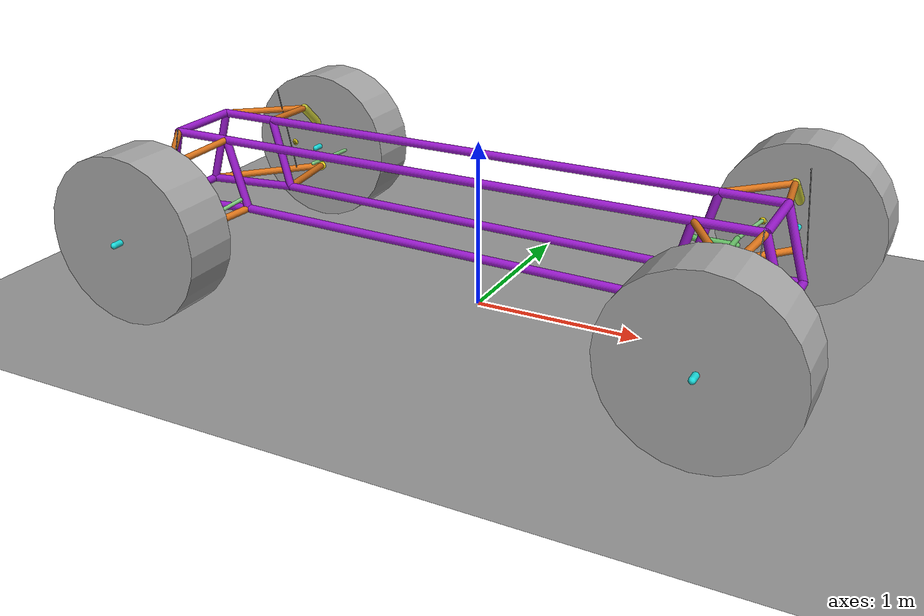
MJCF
<mujoco model="feda_double_wishbone">

  <compiler angle="radian" autolimits="true"/>
  <option gravity="0 0 -9.81" timestep="0.002" integrator="implicitfast"/>
  <size nconmax="200"/>

  <default>
    <geom density="500" contype="1" conaffinity="1"/>
    <joint limited="false"/>
    <equality solimp="0.99 0.999 0.0001" solref="0.02 1"/>
  </default>

  <worldbody>
    <!-- Ground plane: MuJoCo contact solver needs this in the MJCF to detect
         wheel-ground contact from the transparent cylinder geoms on each spindle. -->
    <geom name="ground" type="plane" size="50 50 0.1" rgba="0.6 0.6 0.6 1"
          contype="1" conaffinity="1"/>
    <!-- ── Chassis ── -->
    <!-- FEDA chassis: mass 5672.87 kg, COM from FEDA_Chassis.cpp -->
    <body name="chassis" pos="0 0 0.499">
      <freejoint name="chassis_free"/>
      <inertial mass="5672.87" pos="-0.111 0.009 0.610"
                diaginertia="5740 7660 9870"/>

      <!-- Spring attachment sites on chassis -->
      <site name="spring_c_fl" pos=" 1.7450 -0.493925  0.46209"/>
      <site name="spring_c_fr" pos=" 1.7450  0.493925  0.46209"/>
      <site name="spring_c_rl" pos="-1.7450 -0.493925  0.46209"/>
      <site name="spring_c_rr" pos="-1.7450  0.493925  0.46209"/>

      <!-- ── Chassis frame (visual only): purple pipes connecting inboard A-arm tips ── -->
      <!-- FL corner box -->
      <geom type="capsule" fromto=" 1.69885 -0.2324  0.3469    1.32955 -0.2324  0.3469 " size="0.025" rgba="0.6 0.1 0.8 1" contype="0" conaffinity="0"/>
      <geom type="capsule" fromto=" 1.8188  -0.22246 -0.0800    1.1988  -0.22451 -0.1190" size="0.025" rgba="0.6 0.1 0.8 1" contype="0" conaffinity="0"/>
      <geom type="capsule" fromto=" 1.69885 -0.2324  0.3469    1.8188  -0.22246 -0.0800" size="0.025" rgba="0.6 0.1 0.8 1" contype="0" conaffinity="0"/>
      <geom type="capsule" fromto=" 1.32955 -0.2324  0.3469    1.1988  -0.22451 -0.1190" size="0.025" rgba="0.6 0.1 0.8 1" contype="0" conaffinity="0"/>
      <!-- FR corner box -->
      <geom type="capsule" fromto=" 1.69885  0.2324  0.3469    1.32955  0.2324  0.3469 " size="0.025" rgba="0.6 0.1 0.8 1" contype="0" conaffinity="0"/>
      <geom type="capsule" fromto=" 1.8188   0.22246 -0.0800    1.1988   0.22451 -0.1190" size="0.025" rgba="0.6 0.1 0.8 1" contype="0" conaffinity="0"/>
      <geom type="capsule" fromto=" 1.69885  0.2324  0.3469    1.8188   0.22246 -0.0800" size="0.025" rgba="0.6 0.1 0.8 1" contype="0" conaffinity="0"/>
      <geom type="capsule" fromto=" 1.32955  0.2324  0.3469    1.1988   0.22451 -0.1190" size="0.025" rgba="0.6 0.1 0.8 1" contype="0" conaffinity="0"/>
      <!-- RL corner box -->
      <geom type="capsule" fromto="-1.60325 -0.2324  0.3469   -1.97255 -0.2324  0.3469 " size="0.025" rgba="0.6 0.1 0.8 1" contype="0" conaffinity="0"/>
      <geom type="capsule" fromto="-1.4832  -0.22246 -0.0800  -2.1032  -0.22451 -0.1190" size="0.025" rgba="0.6 0.1 0.8 1" contype="0" conaffinity="0"/>
      <geom type="capsule" fromto="-1.60325 -0.2324  0.3469   -1.4832  -0.22246 -0.0800" size="0.025" rgba="0.6 0.1 0.8 1" contype="0" conaffinity="0"/>
      <geom type="capsule" fromto="-1.97255 -0.2324  0.3469   -2.1032  -0.22451 -0.1190" size="0.025" rgba="0.6 0.1 0.8 1" contype="0" conaffinity="0"/>
      <!-- RR corner box -->
      <geom type="capsule" fromto="-1.60325  0.2324  0.3469   -1.97255  0.2324  0.3469 " size="0.025" rgba="0.6 0.1 0.8 1" contype="0" conaffinity="0"/>
      <geom type="capsule" fromto="-1.4832   0.22246 -0.0800  -2.1032   0.22451 -0.1190" size="0.025" rgba="0.6 0.1 0.8 1" contype="0" conaffinity="0"/>
      <geom type="capsule" fromto="-1.60325  0.2324  0.3469   -1.4832   0.22246 -0.0800" size="0.025" rgba="0.6 0.1 0.8 1" contype="0" conaffinity="0"/>
      <geom type="capsule" fromto="-1.97255  0.2324  0.3469   -2.1032   0.22451 -0.1190" size="0.025" rgba="0.6 0.1 0.8 1" contype="0" conaffinity="0"/>
      <!-- front cross (FL ↔ FR) -->
      <geom type="capsule" fromto=" 1.69885 -0.2324  0.3469    1.69885  0.2324  0.3469 " size="0.025" rgba="0.6 0.1 0.8 1" contype="0" conaffinity="0"/>
      <geom type="capsule" fromto=" 1.8188  -0.22246 -0.0800    1.8188   0.22246 -0.0800" size="0.025" rgba="0.6 0.1 0.8 1" contype="0" conaffinity="0"/>
      <!-- rear cross (RL ↔ RR) -->
      <geom type="capsule" fromto="-1.97255 -0.2324  0.3469   -1.97255  0.2324  0.3469 " size="0.025" rgba="0.6 0.1 0.8 1" contype="0" conaffinity="0"/>
      <geom type="capsule" fromto="-2.1032  -0.22451 -0.1190  -2.1032   0.22451 -0.1190" size="0.025" rgba="0.6 0.1 0.8 1" contype="0" conaffinity="0"/>
      <!-- longitudinal rails (FL↔RL and FR↔RR, inner tips) -->
      <geom type="capsule" fromto=" 1.32955 -0.2324  0.3469   -1.60325 -0.2324  0.3469 " size="0.025" rgba="0.6 0.1 0.8 1" contype="0" conaffinity="0"/>
      <geom type="capsule" fromto=" 1.1988  -0.22451 -0.1190  -1.4832  -0.22246 -0.0800" size="0.025" rgba="0.6 0.1 0.8 1" contype="0" conaffinity="0"/>
      <geom type="capsule" fromto=" 1.32955  0.2324  0.3469   -1.60325  0.2324  0.3469 " size="0.025" rgba="0.6 0.1 0.8 1" contype="0" conaffinity="0"/>
      <geom type="capsule" fromto=" 1.1988   0.22451 -0.1190  -1.4832   0.22246 -0.0800" size="0.025" rgba="0.6 0.1 0.8 1" contype="0" conaffinity="0"/>

      <body name="uca_fl" pos="1.5142 -0.2324 0.3469">
        <joint name="uca_fl_hinge" type="hinge" axis="1 0 0"/>
        <inertial mass="8.45" pos="0.0397 -0.1474 -0.0137"
                  diaginertia="0.03 0.03 0.06276"/>
        <geom type="capsule" fromto=" 0.18465 0 0   0.11926 -0.4420 -0.04101"
              size="0.020" rgba="0.85 0.45 0.10 1"/>
        <geom type="capsule" fromto="-0.18465 0 0   0.11926 -0.4420 -0.04101"
              size="0.020" rgba="0.85 0.45 0.10 1"/>

        <!-- upright body at UCA_U (rel to uca_fl) -->
        <body name="upright_fl" pos="0.11926 -0.4420 -0.04101">
          <joint name="upright_fl_ball" type="ball"/>
          <inertial mass="36.27" pos="0 0 0"
                    diaginertia="0.1656 0.1934 0.04367"/>
          <!-- upright knuckle: hub at SPINDLE (axle), 3 branches to ball joints -->
          <geom type="sphere" size="0.040" pos="0.01759 -0.30223 -0.30589"
                rgba="0.95 0.85 0.10 1" contype="0" conaffinity="0"/>
          <geom type="capsule" fromto="0.01759 -0.30223 -0.30589   0 0 0"
                size="0.028" rgba="0.75 0.75 0.20 1" contype="0" conaffinity="0"/>
          <geom type="capsule" fromto="0.01759 -0.30223 -0.30589   0.02548 -0.13279 -0.44493"
                size="0.028" rgba="0.75 0.75 0.20 1" contype="0" conaffinity="0"/>
          <geom type="capsule" fromto="0.01759 -0.30223 -0.30589   -0.18941 -0.15178 -0.30589"
                size="0.028" rgba="0.75 0.75 0.20 1" contype="0" conaffinity="0"/>
          <geom type="sphere" size="0.032" pos="0.02548 -0.13279 -0.44493"
                rgba="0.95 0.85 0.10 1" contype="0" conaffinity="0"/>
          <geom type="sphere" size="0.028" pos="-0.18941 -0.15178 -0.30589"
                rgba="0.95 0.85 0.10 1" contype="0" conaffinity="0"/>

          <!-- spindle / wheel -->
          <body name="spindle_fl" pos="0.01759 -0.30223 -0.30589">
            <joint name="axle_fl" type="hinge" axis="0 1 0"/>
            <inertial mass="74.2" pos="0 0 0"
                      diaginertia="6.853 11.934 6.853"/>
            <geom type="cylinder" fromto="0 -0.1675 0   0 0.1675 0" size="0.499"
                  rgba="0 0 0 0" contype="1" conaffinity="1"/>
            <geom type="cylinder" fromto="0 -0.1675 0   0 0.1675 0" size="0.499"
                  rgba="0.65 0.65 0.65 1" contype="0" conaffinity="0"/>
            <geom type="cylinder" fromto="0 -0.107 0   0 0.107 0" size="0.286"
                  rgba="0.45 0.45 0.45 1" contype="0" conaffinity="0"/>
            <geom type="capsule" fromto="0 -0.22 0   0 0.22 0"
                  size="0.018" rgba="0.10 0.85 0.85 1" contype="0" conaffinity="0"/>
          </body>
        </body>
      </body>

      <!-- LCA FL: pivot [1.5088, -0.22348, -0.0995], axis (−0.9980, 0, −0.0628) -->
      <body name="lca_fl" pos="1.5088 -0.22348 -0.0995">
        <joint name="lca_fl_hinge" type="hinge" axis="-0.9980 0 -0.0628"/>
        <inertial mass="31.55" pos="0.0500 -0.1949 -0.0133"
                  diaginertia="0.4 0.4 0.8938"/>
        <geom type="capsule"
              fromto=" 0.31000  0.00102  0.01950   0.15008 -0.58371 -0.03954"
              size="0.022" rgba="0.85 0.45 0.10 1"/>
        <geom type="capsule"
              fromto="-0.31000 -0.00103 -0.01950   0.15008 -0.58371 -0.03954"
              size="0.022" rgba="0.85 0.45 0.10 1"/>

        <site name="spring_a_fl" pos="0.23616 -0.42805 -0.0195"/>
      </body>

      <!-- ══════════════════════════════════════════════════════════════════
           FRONT-RIGHT CORNER  (Y-mirrored)
      ══════════════════════════════════════════════════════════════════ -->

      <body name="uca_fr" pos="1.5142  0.2324  0.3469">
        <joint name="uca_fr_hinge" type="hinge" axis="1 0 0"/>
        <inertial mass="8.45" pos="0.0397  0.1474 -0.0137"
                  diaginertia="0.03 0.03 0.06276"/>
        <geom type="capsule" fromto=" 0.18465 0 0   0.11926  0.4420 -0.04101"
              size="0.020" rgba="0.85 0.45 0.10 1"/>
        <geom type="capsule" fromto="-0.18465 0 0   0.11926  0.4420 -0.04101"
              size="0.020" rgba="0.85 0.45 0.10 1"/>

        <body name="upright_fr" pos="0.11926  0.4420 -0.04101">
          <joint name="upright_fr_ball" type="ball"/>
          <inertial mass="36.27" pos="0 0 0"
                    diaginertia="0.1656 0.1934 0.04367"/>
          <!-- upright knuckle: hub at SPINDLE (axle), 3 branches to ball joints -->
          <geom type="sphere" size="0.040" pos="0.01759  0.30223 -0.30589"
                rgba="0.95 0.85 0.10 1" contype="0" conaffinity="0"/>
          <geom type="capsule" fromto="0.01759  0.30223 -0.30589   0 0 0"
                size="0.028" rgba="0.75 0.75 0.20 1" contype="0" conaffinity="0"/>
          <geom type="capsule" fromto="0.01759  0.30223 -0.30589   0.02548  0.13279 -0.44493"
                size="0.028" rgba="0.75 0.75 0.20 1" contype="0" conaffinity="0"/>
          <geom type="capsule" fromto="0.01759  0.30223 -0.30589   -0.18941  0.15178 -0.30589"
                size="0.028" rgba="0.75 0.75 0.20 1" contype="0" conaffinity="0"/>
          <geom type="sphere" size="0.032" pos="0.02548  0.13279 -0.44493"
                rgba="0.95 0.85 0.10 1" contype="0" conaffinity="0"/>
          <geom type="sphere" size="0.028" pos="-0.18941  0.15178 -0.30589"
                rgba="0.95 0.85 0.10 1" contype="0" conaffinity="0"/>

          <body name="spindle_fr" pos="0.01759  0.30223 -0.30589">
            <joint name="axle_fr" type="hinge" axis="0 1 0"/>
            <inertial mass="74.2" pos="0 0 0"
                      diaginertia="6.853 11.934 6.853"/>
            <geom type="cylinder" fromto="0 -0.1675 0   0 0.1675 0" size="0.499"
                  rgba="0 0 0 0" contype="1" conaffinity="1"/>
            <geom type="cylinder" fromto="0 -0.1675 0   0 0.1675 0" size="0.499"
                  rgba="0.65 0.65 0.65 1" contype="0" conaffinity="0"/>
            <geom type="cylinder" fromto="0 -0.107 0   0 0.107 0" size="0.286"
                  rgba="0.45 0.45 0.45 1" contype="0" conaffinity="0"/>
            <geom type="capsule" fromto="0 -0.22 0   0 0.22 0"
                  size="0.018" rgba="0.10 0.85 0.85 1" contype="0" conaffinity="0"/>
          </body>
        </body>
      </body>

      <body name="lca_fr" pos="1.5088  0.22348 -0.0995">
        <joint name="lca_fr_hinge" type="hinge" axis="-0.9980 0 -0.0628"/>
        <inertial mass="31.55" pos="0.0500  0.1949 -0.0133"
                  diaginertia="0.4 0.4 0.8938"/>
        <geom type="capsule"
              fromto=" 0.31000 -0.00102  0.01950   0.15008  0.58371 -0.03954"
              size="0.022" rgba="0.85 0.45 0.10 1"/>
        <geom type="capsule"
              fromto="-0.31000  0.00103 -0.01950   0.15008  0.58371 -0.03954"
              size="0.022" rgba="0.85 0.45 0.10 1"/>

        <site name="spring_a_fr" pos="0.23616  0.42805 -0.0195"/>
      </body>

      <body name="uca_rl" pos="-1.7879 -0.2324  0.3469">
        <joint name="uca_rl_hinge" type="hinge" axis="1 0 0"/>
        <inertial mass="8.45" pos="0.0397 -0.1474 -0.0137"
                  diaginertia="0.03 0.03 0.06276"/>
        <geom type="capsule" fromto=" 0.18465 0 0   0.11926 -0.4420 -0.04101"
              size="0.020" rgba="0.85 0.45 0.10 1"/>
        <geom type="capsule" fromto="-0.18465 0 0   0.11926 -0.4420 -0.04101"
              size="0.020" rgba="0.85 0.45 0.10 1"/>

        <body name="upright_rl" pos="0.11926 -0.4420 -0.04101">
          <joint name="upright_rl_ball" type="ball"/>
          <inertial mass="36.27" pos="0 0 0"
                    diaginertia="0.1656 0.1934 0.04367"/>
          <!-- upright knuckle: hub at SPINDLE (axle), 3 branches to ball joints -->
          <geom type="sphere" size="0.040" pos="0.01759 -0.30223 -0.30589"
                rgba="0.95 0.85 0.10 1" contype="0" conaffinity="0"/>
          <geom type="capsule" fromto="0.01759 -0.30223 -0.30589   0 0 0"
                size="0.028" rgba="0.75 0.75 0.20 1" contype="0" conaffinity="0"/>
          <geom type="capsule" fromto="0.01759 -0.30223 -0.30589   0.02548 -0.13279 -0.44493"
                size="0.028" rgba="0.75 0.75 0.20 1" contype="0" conaffinity="0"/>
          <geom type="capsule" fromto="0.01759 -0.30223 -0.30589   -0.18941 -0.15178 -0.30589"
                size="0.028" rgba="0.75 0.75 0.20 1" contype="0" conaffinity="0"/>
          <geom type="sphere" size="0.032" pos="0.02548 -0.13279 -0.44493"
                rgba="0.95 0.85 0.10 1" contype="0" conaffinity="0"/>
          <geom type="sphere" size="0.028" pos="-0.18941 -0.15178 -0.30589"
                rgba="0.95 0.85 0.10 1" contype="0" conaffinity="0"/>

          <body name="spindle_rl" pos="0.01759 -0.30223 -0.30589">
            <joint name="axle_rl" type="hinge" axis="0 1 0"/>
            <inertial mass="74.2" pos="0 0 0"
                      diaginertia="6.853 11.934 6.853"/>
            <geom type="cylinder" fromto="0 -0.1675 0   0 0.1675 0" size="0.499"
                  rgba="0 0 0 0" contype="1" conaffinity="1"/>
            <geom type="cylinder" fromto="0 -0.1675 0   0 0.1675 0" size="0.499"
                  rgba="0.65 0.65 0.65 1" contype="0" conaffinity="0"/>
            <geom type="cylinder" fromto="0 -0.107 0   0 0.107 0" size="0.286"
                  rgba="0.45 0.45 0.45 1" contype="0" conaffinity="0"/>
            <geom type="capsule" fromto="0 -0.22 0   0 0.22 0"
                  size="0.018" rgba="0.10 0.85 0.85 1" contype="0" conaffinity="0"/>
          </body>
        </body>
      </body>

      <body name="lca_rl" pos="-1.7932 -0.22348 -0.0995">
        <joint name="lca_rl_hinge" type="hinge" axis="-0.9980 0 -0.0628"/>
        <inertial mass="31.55" pos="0.0500 -0.1949 -0.0133"
                  diaginertia="0.4 0.4 0.8938"/>
        <geom type="capsule"
              fromto=" 0.31000  0.00102  0.01950   0.15008 -0.58371 -0.03954"
              size="0.022" rgba="0.85 0.45 0.10 1"/>
        <geom type="capsule"
              fromto="-0.31000 -0.00103 -0.01950   0.15008 -0.58371 -0.03954"
              size="0.022" rgba="0.85 0.45 0.10 1"/>

        <site name="spring_a_rl" pos="0.04820 -0.42805 -0.0195"/>
      </body>

      <!-- ══════════════════════════════════════════════════════════════════
           REAR-RIGHT CORNER  (Y-mirrored)
      ══════════════════════════════════════════════════════════════════ -->

      <body name="uca_rr" pos="-1.7879  0.2324  0.3469">
        <joint name="uca_rr_hinge" type="hinge" axis="1 0 0"/>
        <inertial mass="8.45" pos="0.0397  0.1474 -0.0137"
                  diaginertia="0.03 0.03 0.06276"/>
        <geom type="capsule" fromto=" 0.18465 0 0   0.11926  0.4420 -0.04101"
              size="0.020" rgba="0.85 0.45 0.10 1"/>
        <geom type="capsule" fromto="-0.18465 0 0   0.11926  0.4420 -0.04101"
              size="0.020" rgba="0.85 0.45 0.10 1"/>

        <body name="upright_rr" pos="0.11926  0.4420 -0.04101">
          <joint name="upright_rr_ball" type="ball"/>
          <inertial mass="36.27" pos="0 0 0"
                    diaginertia="0.1656 0.1934 0.04367"/>
          <!-- upright knuckle: hub at SPINDLE (axle), 3 branches to ball joints -->
          <geom type="sphere" size="0.040" pos="0.01759  0.30223 -0.30589"
                rgba="0.95 0.85 0.10 1" contype="0" conaffinity="0"/>
          <geom type="capsule" fromto="0.01759  0.30223 -0.30589   0 0 0"
                size="0.028" rgba="0.75 0.75 0.20 1" contype="0" conaffinity="0"/>
          <geom type="capsule" fromto="0.01759  0.30223 -0.30589   0.02548  0.13279 -0.44493"
                size="0.028" rgba="0.75 0.75 0.20 1" contype="0" conaffinity="0"/>
          <geom type="capsule" fromto="0.01759  0.30223 -0.30589   -0.18941  0.15178 -0.30589"
                size="0.028" rgba="0.75 0.75 0.20 1" contype="0" conaffinity="0"/>
          <geom type="sphere" size="0.032" pos="0.02548  0.13279 -0.44493"
                rgba="0.95 0.85 0.10 1" contype="0" conaffinity="0"/>
          <geom type="sphere" size="0.028" pos="-0.18941  0.15178 -0.30589"
                rgba="0.95 0.85 0.10 1" contype="0" conaffinity="0"/>

          <body name="spindle_rr" pos="0.01759  0.30223 -0.30589">
            <joint name="axle_rr" type="hinge" axis="0 1 0"/>
            <inertial mass="74.2" pos="0 0 0"
                      diaginertia="6.853 11.934 6.853"/>
            <geom type="cylinder" fromto="0 -0.1675 0   0 0.1675 0" size="0.499"
                  rgba="0 0 0 0" contype="1" conaffinity="1"/>
            <geom type="cylinder" fromto="0 -0.1675 0   0 0.1675 0" size="0.499"
                  rgba="0.65 0.65 0.65 1" contype="0" conaffinity="0"/>
            <geom type="cylinder" fromto="0 -0.107 0   0 0.107 0" size="0.286"
                  rgba="0.45 0.45 0.45 1" contype="0" conaffinity="0"/>
            <geom type="capsule" fromto="0 -0.22 0   0 0.22 0"
                  size="0.018" rgba="0.10 0.85 0.85 1" contype="0" conaffinity="0"/>
          </body>
        </body>
      </body>

      <body name="lca_rr" pos="-1.7932  0.22348 -0.0995">
        <joint name="lca_rr_hinge" type="hinge" axis="-0.9980 0 -0.0628"/>
        <inertial mass="31.55" pos="0.0500  0.1949 -0.0133"
                  diaginertia="0.4 0.4 0.8938"/>
        <geom type="capsule"
              fromto=" 0.31000 -0.00102  0.01950   0.15008  0.58371 -0.03954"
              size="0.022" rgba="0.85 0.45 0.10 1"/>
        <geom type="capsule"
              fromto="-0.31000  0.00103 -0.01950   0.15008  0.58371 -0.03954"
              size="0.022" rgba="0.85 0.45 0.10 1"/>

        <site name="spring_a_rr" pos="0.04820  0.42805 -0.0195"/>
      </body>

      <body name="pitman_arm" pos="1.160 -0.379095 0">
        <joint name="steer_motor" type="hinge" axis="0 0 1"
               limited="true" range="-0.47947 0.47947"/>
        <inertial mass="1.605" pos="0.125 0 0"
                  diaginertia="0.00638 0.00756 0.00150"/>
        <geom type="capsule" fromto="0 0 0   0.250 0 0"
              size="0.018" rgba="0.40 0.75 0.40 1"/>

        <!-- steering link: ball joint at UNIV, 0.250 m along arm -->
        <body name="steering_link" pos="0.250 0 0">
          <joint name="steering_link_ball" type="ball"/>
          <inertial mass="3.681" pos="0 0.379095 0.04"
                    diaginertia="0.252 0.00233 0.254"/>
          <!-- bar from FL tierod attach (Y=0) to FR (Y=+0.75819) -->
          <geom type="capsule"
                fromto="0 0 0.04   0 0.758190 0.04"
                size="0.016" rgba="0.40 0.75 0.40 1"/>

          <!-- FL tierod body: ball joint at TIEROD_PA (SL local [0,0,0.04]) -->
          <body name="tierod_fl" pos="0 0 0.04">
            <joint name="tierod_fl_ball" type="ball"/>
            <inertial mass="6.0" pos="0.017 -0.224 -0.020"
                      diaginertia="0.05 0.05 0.5"/>
            <!-- far end → TIEROD_U_FL: offset [0.034,−0.447,−0.040] -->
            <geom type="capsule" fromto="0 0 0   0.034 -0.447 -0.040"
                  size="0.012" rgba="0.50 0.80 0.50 1"/>
          </body>

          <!-- FR tierod body (Y-mirror, at right end of steering bar) -->
          <body name="tierod_fr" pos="0 0.758190 0.04">
            <joint name="tierod_fr_ball" type="ball"/>
            <inertial mass="6.0" pos="0.017  0.224 -0.020"
                      diaginertia="0.05 0.05 0.5"/>
            <geom type="capsule" fromto="0 0 0   0.034  0.447 -0.040"
                  size="0.012" rgba="0.50 0.80 0.50 1"/>
          </body>
        </body>
      </body><!-- pitman_arm -->

      <!-- Rear tierod bodies: ball joint at TIEROD_C, far end at TIEROD_U -->
      <!-- RL: TIEROD_C chassis=(−1.410,−0.379095,0.04), U=(−1.444,−0.82618,0) -->
      <body name="tierod_rl" pos="-1.410 -0.379095 0.04">
        <joint name="tierod_rl_ball" type="ball"/>
        <inertial mass="6.0" pos="-0.017 -0.224 -0.020"
                  diaginertia="0.05 0.05 0.5"/>
        <geom type="capsule" fromto="0 0 0   -0.034 -0.447 -0.040"
              size="0.012" rgba="0.50 0.80 0.50 1"/>
      </body>
      <body name="tierod_rr" pos="-1.410  0.379095 0.04">
        <joint name="tierod_rr_ball" type="ball"/>
        <inertial mass="6.0" pos="-0.017  0.224 -0.020"
                  diaginertia="0.05 0.05 0.5"/>
        <geom type="capsule" fromto="0 0 0   -0.034  0.447 -0.040"
              size="0.012" rgba="0.50 0.80 0.50 1"/>
      </body>

      <!-- Idler arm: passive Z-hinge on right side, mirrors pitman arm -->
      <body name="idler_arm" pos="1.160  0.379095 0">
        <joint name="idler_hinge" type="hinge" axis="0 0 1"/>
        <inertial mass="1.5" pos="0.125 0 0"
                  diaginertia="0.003 0.008 0.008"/>
        <geom type="capsule" fromto="0 0 0   0.250 0 0"
              size="0.018" rgba="0.40 0.75 0.40 1"/>
      </body>

    </body><!-- chassis -->
  </worldbody>

  <!-- ── Equality constraints ── -->
  <equality>
    <!-- Wishbone loop closures: LCA_U anchor in lca body frame -->
    <connect name="lca_fl_close" body1="lca_fl"  body2="upright_fl"
             anchor="0.15008 -0.58371 -0.03954"/>
    <connect name="lca_fr_close" body1="lca_fr"  body2="upright_fr"
             anchor="0.15008  0.58371 -0.03954"/>
    <connect name="lca_rl_close" body1="lca_rl"  body2="upright_rl"
             anchor="0.15008 -0.58371 -0.03954"/>
    <connect name="lca_rr_close" body1="lca_rr"  body2="upright_rr"
             anchor="0.15008  0.58371 -0.03954"/>

    <!-- Idler arm tip coincides with right end of steering link at q=0 -->
    <connect name="idler_close" body1="idler_arm" body2="steering_link"
             anchor="0.250 0 0"/>

    <!-- Front tierods: far end of tierod body → TIEROD_U on upright -->
    <connect name="tierod_fl_end" body1="tierod_fl" body2="upright_fl"
             anchor="0.034 -0.447 -0.040"/>
    <connect name="tierod_fr_end" body1="tierod_fr" body2="upright_fr"
             anchor="0.034  0.447 -0.040"/>

    <!-- Rear tierods -->
    <connect name="tierod_rl_end" body1="tierod_rl" body2="upright_rl"
             anchor="-0.034 -0.447 -0.040"/>
    <connect name="tierod_rr_end" body1="tierod_rr" body2="upright_rr"
             anchor="-0.034  0.447 -0.040"/>
  </equality>

  <!-- ── TSDA spring-damper tendons ── -->
  <tendon>
    <spatial name="tsda_fl" stiffness="76000" damping="23000" springlength="0.72763">
      <site site="spring_c_fl"/>
      <site site="spring_a_fl"/>
    </spatial>
    <spatial name="tsda_fr" stiffness="76000" damping="23000" springlength="0.72763">
      <site site="spring_c_fr"/>
      <site site="spring_a_fr"/>
    </spatial>
    <spatial name="tsda_rl" stiffness="76000" damping="23000" springlength="0.72763">
      <site site="spring_c_rl"/>
      <site site="spring_a_rl"/>
    </spatial>
    <spatial name="tsda_rr" stiffness="76000" damping="23000" springlength="0.72763">
      <site site="spring_c_rr"/>
      <site site="spring_a_rr"/>
    </spatial>
  </tendon>

  <!-- ── Actuators ── -->
  <actuator>
    <!-- Pitman arm steering motor: position-controlled, ±27.5° -->
    <position name="steer_motor_act" joint="steer_motor" kp="8000" kv="500"
              ctrlrange="-0.47947 0.47947"/>
    <!-- 4WD axles: velocity-controlled -->
    <velocity name="axle_fl_act" joint="axle_fl" kv="800"/>
    <velocity name="axle_fr_act" joint="axle_fr" kv="800"/>
    <velocity name="axle_rl_act" joint="axle_rl" kv="800"/>
    <velocity name="axle_rr_act" joint="axle_rr" kv="800"/>
  </actuator>

</mujoco>
